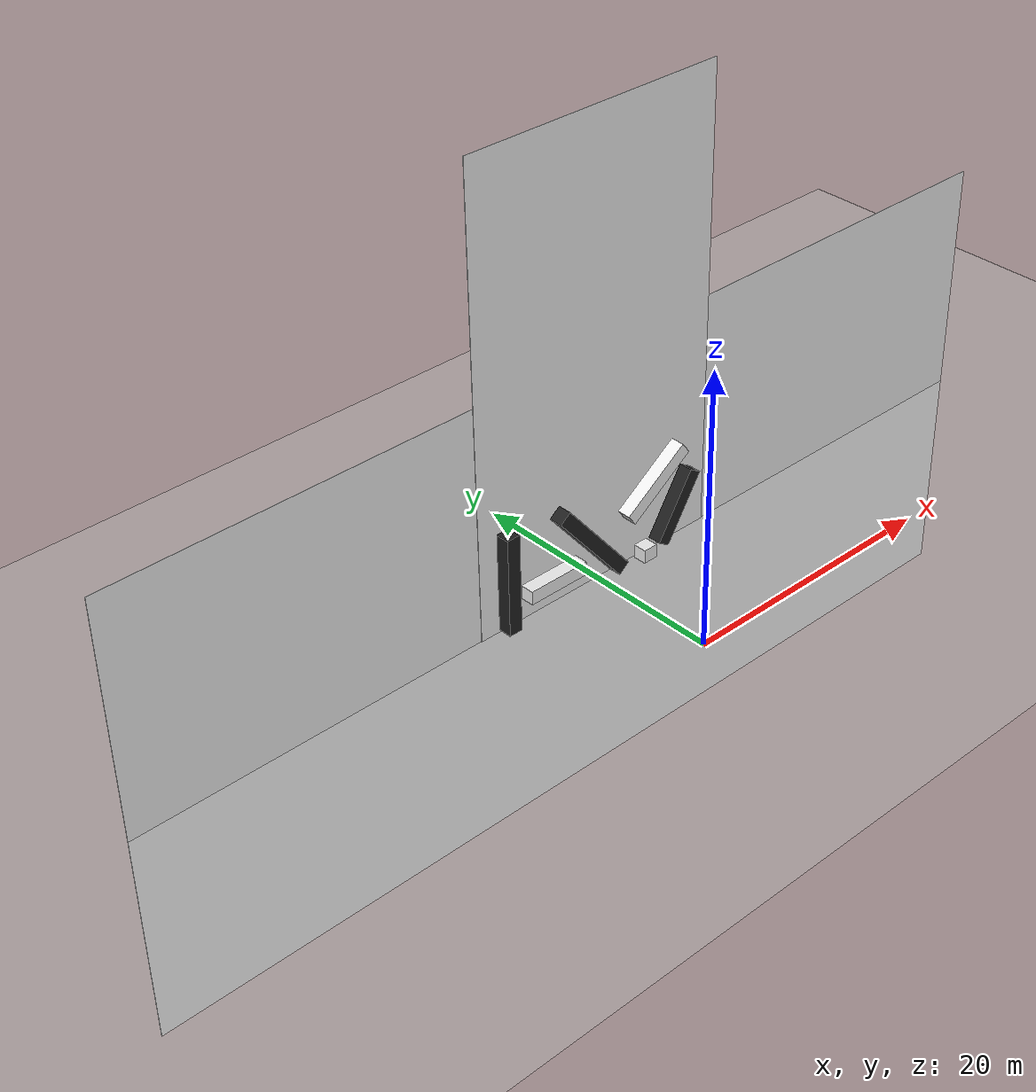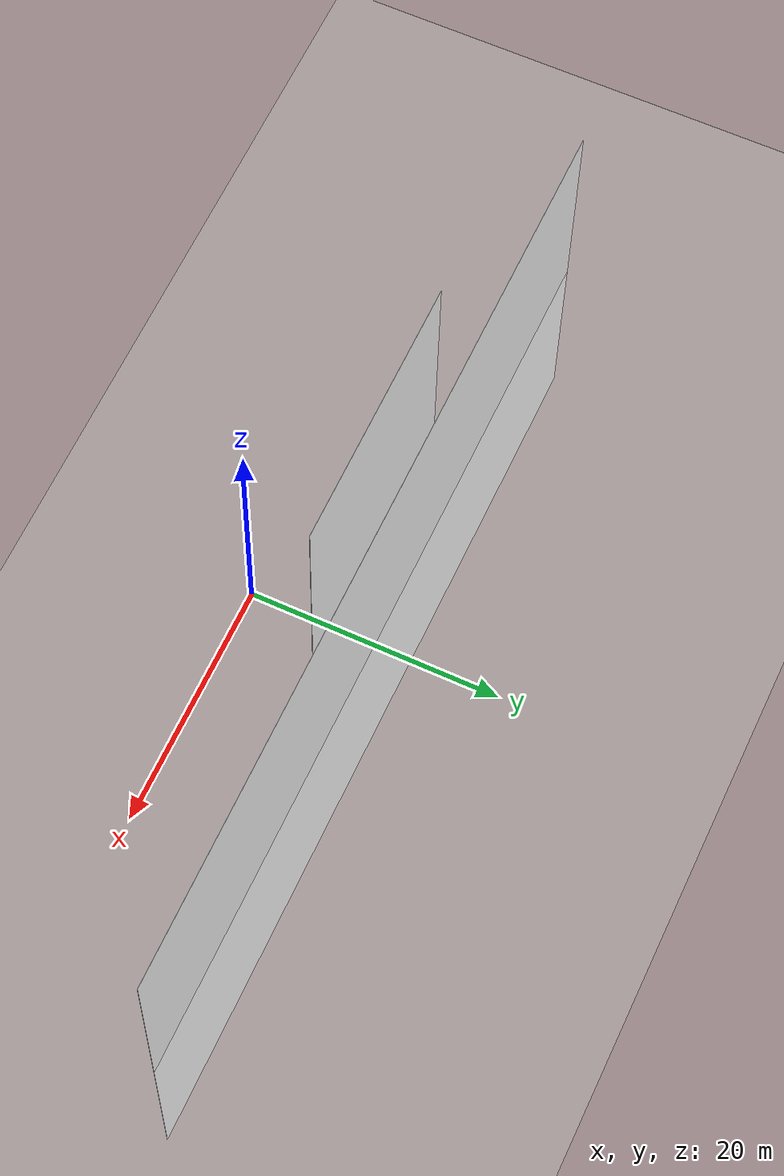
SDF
<sdf version="1.7">
 <world name="default">
  <light name="sun" type="directional">
   <cast_shadows>0</cast_shadows>
   <pose>0 0 10 0 -0 0</pose>
   <diffuse>0.8 0.8 0.8 1</diffuse>
   <specular>0.2 0.2 0.2 1</specular>
   <attenuation>
    <range>1000</range>
    <constant>0.9</constant>
    <linear>0.01</linear>
    <quadratic>0.001</quadratic>
   </attenuation>
   <direction>-0.5 0.1 -0.9</direction>
   <spot><inner_angle>0</inner_angle><outer_angle>0</outer_angle><falloff>0</falloff></spot>
  </light>
  <model name="ground_plane">
   <static>1</static>
   <link name="link">
    <collision name="collision">
     <geometry><plane><normal>0 0 1</normal><size>100 100</size></plane></geometry>
     <surface>
      <contact><collide_bitmask>65535</collide_bitmask></contact>
      <friction><ode><mu>100</mu><mu2>50</mu2></ode></friction>
     </surface>
    </collision>
    <visual name="visual">
     <cast_shadows>0</cast_shadows>
     <geometry><plane><normal>0 0 1</normal><size>100 100</size></plane></geometry>
     <material>
      <script><uri>file://media/materials/scripts/gazebo.material</uri><name>Gazebo/Grey</name></script>
     </material>
    </visual>
   </link>
  </model>
  <gravity>0 0 -9.8</gravity>
  <magnetic_field>6e-06 2.3e-05 -4.2e-05</magnetic_field>
  <atmosphere type="adiabatic"/>
  <physics type="ode">
   <max_step_size>0.001</max_step_size>
   <real_time_factor>1</real_time_factor>
   <real_time_update_rate>1000</real_time_update_rate>
  </physics>
  <scene><ambient>0.4 0.4 0.4 1</ambient><background>0.7 0.7 0.7 1</background><shadows>0</shadows></scene>
  <spherical_coordinates>
   <surface_model>EARTH_WGS84</surface_model>
   <latitude_deg>0</latitude_deg>
   <longitude_deg>0</longitude_deg>
   <elevation>0</elevation>
   <heading_deg>0</heading_deg>
  </spherical_coordinates>
  <model name="Untitled_0">
   <link name="link_0">
    <inertial>
     <mass>1</mass>
     <inertia>
      <ixx>0.166667</ixx>
      <ixy>0</ixy>
      <ixz>0</ixz>
      <iyy>0.166667</iyy>
      <iyz>0</iyz>
      <izz>0.166667</izz>
     </inertia>
    </inertial>
    <gravity>0</gravity>
    <visual name="visual">
     <geometry><box><size>1 1 7.3332</size></box></geometry>
     <material>
      <lighting>1</lighting>
      <script><uri>file://media/materials/scripts/gazebo.material</uri><name>Gazebo/Black</name></script>
      <shader type="pixel"><normal_map>__default__</normal_map></shader>
      <ambient>0 0 0 1</ambient>
      <diffuse>0 0 0 1</diffuse>
      <specular>0.1 0.1 0.1 1</specular>
      <emissive>0 0 0 1</emissive>
     </material>
     <cast_shadows>0</cast_shadows>
    </visual>
    <collision name="collision">
     <geometry><box><size>1 1 7.3332</size></box></geometry>
     <surface>
      <friction>
       <ode><mu>1</mu><mu2>1</mu2><fdir1>0 0 0</fdir1><slip1>0</slip1><slip2>0</slip2></ode>
       <torsional>
        <coefficient>1</coefficient>
        <patch_radius>0</patch_radius>
        <surface_radius>0</surface_radius>
        <use_patch_radius>1</use_patch_radius>
        <ode><slip>0</slip></ode>
       </torsional>
      </friction>
      <bounce><restitution_coefficient>0</restitution_coefficient><threshold>1e+06</threshold></bounce>
      <contact>
       <collide_without_contact>0</collide_without_contact>
       <collide_without_contact_bitmask>1</collide_without_contact_bitmask>
       <collide_bitmask>1</collide_bitmask>
       <ode>
        <soft_cfm>0</soft_cfm>
        <soft_erp>0.2</soft_erp>
        <kp>1e+13</kp>
        <kd>1</kd>
        <max_vel>0.01</max_vel>
        <min_depth>0</min_depth>
       </ode>
       <bullet>
        <split_impulse>1</split_impulse>
        <split_impulse_penetration_threshold>-0.01</split_impulse_penetration_threshold>
        <soft_cfm>0</soft_cfm>
        <soft_erp>0.2</soft_erp>
        <kp>1e+13</kp>
        <kd>1</kd>
       </bullet>
      </contact>
     </surface>
    </collision>
   </link>
   <static>1</static>
   <pose>-8.10011 9.21128 4.00432 0 -0 0</pose>
  </model>
  <model name="Untitled_0_clone_0_clone">
   <link name="link_0">
    <inertial>
     <mass>1</mass>
     <inertia>
      <ixx>0.166667</ixx>
      <ixy>0</ixy>
      <ixz>0</ixz>
      <iyy>0.166667</iyy>
      <iyz>0</iyz>
      <izz>0.166667</izz>
     </inertia>
    </inertial>
    <gravity>0</gravity>
    <visual name="visual">
     <geometry><box><size>1 1 8.20534</size></box></geometry>
     <material>
      <lighting>1</lighting>
      <script><uri>file://media/materials/scripts/gazebo.material</uri><name>Gazebo/Black</name></script>
      <shader type="pixel"><normal_map>__default__</normal_map></shader>
      <ambient>0 0 0 1</ambient>
      <diffuse>0 0 0 1</diffuse>
      <specular>0.1 0.1 0.1 1</specular>
      <emissive>0 0 0 1</emissive>
     </material>
     <cast_shadows>0</cast_shadows>
    </visual>
    <collision name="collision">
     <geometry><box><size>1 1 8.20534</size></box></geometry>
     <surface>
      <friction>
       <ode><mu>1</mu><mu2>1</mu2><fdir1>0 0 0</fdir1><slip1>0</slip1><slip2>0</slip2></ode>
       <torsional>
        <coefficient>1</coefficient>
        <patch_radius>0</patch_radius>
        <surface_radius>0</surface_radius>
        <use_patch_radius>1</use_patch_radius>
        <ode><slip>0</slip></ode>
       </torsional>
      </friction>
      <bounce><restitution_coefficient>0</restitution_coefficient><threshold>1e+06</threshold></bounce>
      <contact>
       <collide_without_contact>0</collide_without_contact>
       <collide_without_contact_bitmask>1</collide_without_contact_bitmask>
       <collide_bitmask>1</collide_bitmask>
       <ode>
        <soft_cfm>0</soft_cfm>
        <soft_erp>0.2</soft_erp>
        <kp>1e+13</kp>
        <kd>1</kd>
        <max_vel>0.01</max_vel>
        <min_depth>0</min_depth>
       </ode>
       <bullet>
        <split_impulse>1</split_impulse>
        <split_impulse_penetration_threshold>-0.01</split_impulse_penetration_threshold>
        <soft_cfm>0</soft_cfm>
        <soft_erp>0.2</soft_erp>
        <kp>1e+13</kp>
        <kd>1</kd>
       </bullet>
      </contact>
     </surface>
    </collision>
   </link>
   <static>1</static>
   <pose>-1.67139 8.66089 4.34718 0 -0.678952 0</pose>
  </model>
  <light name="user_directional_light_0" type="directional">
   <pose>-0.169991 0.23952 1 0 -0 0</pose>
   <diffuse>0.5 0.5 0.5 1</diffuse>
   <specular>0.1 0.1 0.1 1</specular>
   <direction>0.1 0.1 -0.9</direction>
   <attenuation>
    <range>20</range>
    <constant>0.5</constant>
    <linear>0.01</linear>
    <quadratic>0.001</quadratic>
   </attenuation>
   <spot><inner_angle>0</inner_angle><outer_angle>0</outer_angle><falloff>0</falloff></spot>
  </light>
  <model name="Untitled23">
   <link name="link_2">
    <inertial>
     <mass>20.383</mass>
     <inertia><ixx>1883.11</ixx><ixy>0</ixy><ixz>0</ixz><iyy>2554.49</iyy><iyz>0</iyz><izz>671.385</izz></inertia>
    </inertial>
    <visual name="visual">
     <geometry><box><size>72.3894 0.030727 33.2961</size></box></geometry>
     <material>
      <lighting>1</lighting>
      <script><uri>file://media/materials/scripts/gazebo.material</uri><name>Gazebo/White</name></script>
      <shader type="pixel"><normal_map>__default__</normal_map></shader>
      <ambient>1 1 1 1</ambient>
      <diffuse>1 1 1 1</diffuse>
      <specular>1 1 1 1</specular>
      <emissive>1 1 1 1</emissive>
     </material>
     <cast_shadows>0</cast_shadows>
    </visual>
    <collision name="collision">
     <geometry><box><size>72.3894 0.030727 33.2961</size></box></geometry>
     <surface>
      <friction>
       <ode><mu>1</mu><mu2>1</mu2><fdir1>0 0 0</fdir1><slip1>0</slip1><slip2>0</slip2></ode>
       <torsional>
        <coefficient>1</coefficient>
        <patch_radius>0</patch_radius>
        <surface_radius>0</surface_radius>
        <use_patch_radius>1</use_patch_radius>
        <ode><slip>0</slip></ode>
       </torsional>
      </friction>
      <bounce><restitution_coefficient>0</restitution_coefficient><threshold>1e+06</threshold></bounce>
      <contact>
       <collide_without_contact>0</collide_without_contact>
       <collide_without_contact_bitmask>1</collide_without_contact_bitmask>
       <collide_bitmask>1</collide_bitmask>
       <ode>
        <soft_cfm>0</soft_cfm>
        <soft_erp>0.2</soft_erp>
        <kp>1e+13</kp>
        <kd>1</kd>
        <max_vel>0.01</max_vel>
        <min_depth>0</min_depth>
       </ode>
       <bullet>
        <split_impulse>1</split_impulse>
        <split_impulse_penetration_threshold>-0.01</split_impulse_penetration_threshold>
        <soft_cfm>0</soft_cfm>
        <soft_erp>0.2</soft_erp>
        <kp>1e+13</kp>
        <kd>1</kd>
       </bullet>
      </contact>
     </surface>
    </collision>
   </link>
   <static>1</static>
   <pose>-0.103476 10.0194 0.5 0 -0 0</pose>
  </model>
  <model name="Untitled2">
   <link name="link_2">
    <inertial>
     <mass>20.383</mass>
     <inertia><ixx>1883.11</ixx><ixy>0</ixy><ixz>0</ixz><iyy>2554.49</iyy><iyz>0</iyz><izz>671.385</izz></inertia>
    </inertial>
    <visual name="visual">
     <geometry><box><size>19.8811 0.030727 33.2961</size></box></geometry>
     <material>
      <lighting>1</lighting>
      <script><uri>file://media/materials/scripts/gazebo.material</uri><name>Gazebo/White</name></script>
      <shader type="pixel"><normal_map>__default__</normal_map></shader>
      <ambient>1 1 1 1</ambient>
      <diffuse>1 1 1 1</diffuse>
      <specular>0 0 0 1</specular>
      <emissive>0 0 0 1</emissive>
     </material>
    </visual>
    <collision name="collision">
     <geometry><box><size>19.8811 0.030727 33.2961</size></box></geometry>
     <surface>
      <friction>
       <ode><mu>1</mu><mu2>1</mu2><fdir1>0 0 0</fdir1><slip1>0</slip1><slip2>0</slip2></ode>
       <torsional>
        <coefficient>1</coefficient>
        <patch_radius>0</patch_radius>
        <surface_radius>0</surface_radius>
        <use_patch_radius>1</use_patch_radius>
        <ode><slip>0</slip></ode>
       </torsional>
      </friction>
      <bounce><restitution_coefficient>0</restitution_coefficient><threshold>1e+06</threshold></bounce>
      <contact>
       <collide_without_contact>0</collide_without_contact>
       <collide_without_contact_bitmask>1</collide_without_contact_bitmask>
       <collide_bitmask>1</collide_bitmask>
       <ode>
        <soft_cfm>0</soft_cfm>
        <soft_erp>0.2</soft_erp>
        <kp>1e+13</kp>
        <kd>1</kd>
        <max_vel>0.01</max_vel>
        <min_depth>0</min_depth>
       </ode>
       <bullet>
        <split_impulse>1</split_impulse>
        <split_impulse_penetration_threshold>-0.01</split_impulse_penetration_threshold>
        <soft_cfm>0</soft_cfm>
        <soft_erp>0.2</soft_erp>
        <kp>1e+13</kp>
        <kd>1</kd>
       </bullet>
      </contact>
     </surface>
    </collision>
   </link>
   <static>0</static>
   <pose>-0.046205 9.87091 16.648 -5e-05 -0 -0</pose>
  </model>
  <model name="Untitled_0_clone_0_clone_clone_clone_0">
   <link name="link_0">
    <inertial>
     <mass>1</mass>
     <inertia>
      <ixx>0.166667</ixx>
      <ixy>0</ixy>
      <ixz>0</ixz>
      <iyy>0.166667</iyy>
      <iyz>0</iyz>
      <izz>0.166667</izz>
     </inertia>
    </inertial>
    <visual name="visual">
     <geometry><box><size>1 1 4.70672</size></box></geometry>
     <material>
      <lighting>1</lighting>
      <script><uri>file://media/materials/scripts/gazebo.material</uri><name>Gazebo/White</name></script>
      <shader type="pixel"><normal_map>__default__</normal_map></shader>
      <ambient>1 1 1 1</ambient>
      <diffuse>1 1 1 1</diffuse>
      <specular>1 1 1 1</specular>
      <emissive>1 1 1 1</emissive>
     </material>
     <cast_shadows>0</cast_shadows>
    </visual>
    <collision name="collision">
     <geometry><box><size>1 1 4.70672</size></box></geometry>
     <surface>
      <friction>
       <ode><mu>1</mu><mu2>1</mu2><fdir1>0 0 0</fdir1><slip1>0</slip1><slip2>0</slip2></ode>
       <torsional>
        <coefficient>1</coefficient>
        <patch_radius>0</patch_radius>
        <surface_radius>0</surface_radius>
        <use_patch_radius>1</use_patch_radius>
        <ode><slip>0</slip></ode>
       </torsional>
      </friction>
      <bounce><restitution_coefficient>0</restitution_coefficient><threshold>1e+06</threshold></bounce>
      <contact>
       <collide_without_contact>0</collide_without_contact>
       <collide_without_contact_bitmask>1</collide_without_contact_bitmask>
       <collide_bitmask>1</collide_bitmask>
       <ode>
        <soft_cfm>0</soft_cfm>
        <soft_erp>0.2</soft_erp>
        <kp>1e+13</kp>
        <kd>1</kd>
        <max_vel>0.01</max_vel>
        <min_depth>0</min_depth>
       </ode>
       <bullet>
        <split_impulse>1</split_impulse>
        <split_impulse_penetration_threshold>-0.01</split_impulse_penetration_threshold>
        <soft_cfm>0</soft_cfm>
        <soft_erp>0.2</soft_erp>
        <kp>1e+13</kp>
        <kd>1</kd>
       </bullet>
      </contact>
     </surface>
    </collision>
   </link>
   <static>1</static>
   <pose>-4.33256 9.19029 2.34243 0 -1.57042 0</pose>
  </model>
  <model name="Untitled_0_clone_0_clone_clone_clone_0_clone">
   <link name="link_0">
    <inertial>
     <mass>1</mass>
     <inertia>
      <ixx>0.166667</ixx>
      <ixy>0</ixy>
      <ixz>0</ixz>
      <iyy>0.166667</iyy>
      <iyz>0</iyz>
      <izz>0.166667</izz>
     </inertia>
    </inertial>
    <visual name="visual">
     <geometry><box><size>0.999994 1 5.95018</size></box></geometry>
     <material>
      <lighting>1</lighting>
      <script><uri>file://media/materials/scripts/gazebo.material</uri><name>Gazebo/White</name></script>
      <shader type="pixel"><normal_map>__default__</normal_map></shader>
      <ambient>1 1 1 1</ambient>
      <diffuse>1 1 1 1</diffuse>
      <specular>1 1 1 1</specular>
      <emissive>1 1 1 1</emissive>
     </material>
     <cast_shadows>0</cast_shadows>
    </visual>
    <collision name="collision">
     <geometry><box><size>0.999994 1 5.95018</size></box></geometry>
     <surface>
      <friction>
       <ode><mu>1</mu><mu2>1</mu2><fdir1>0 0 0</fdir1><slip1>0</slip1><slip2>0</slip2></ode>
       <torsional>
        <coefficient>1</coefficient>
        <patch_radius>0</patch_radius>
        <surface_radius>0</surface_radius>
        <use_patch_radius>1</use_patch_radius>
        <ode><slip>0</slip></ode>
       </torsional>
      </friction>
      <bounce><restitution_coefficient>0</restitution_coefficient><threshold>1e+06</threshold></bounce>
      <contact>
       <collide_without_contact>0</collide_without_contact>
       <collide_without_contact_bitmask>1</collide_without_contact_bitmask>
       <collide_bitmask>1</collide_bitmask>
       <ode>
        <soft_cfm>0</soft_cfm>
        <soft_erp>0.2</soft_erp>
        <kp>1e+13</kp>
        <kd>1</kd>
        <max_vel>0.01</max_vel>
        <min_depth>0</min_depth>
       </ode>
       <bullet>
        <split_impulse>1</split_impulse>
        <split_impulse_penetration_threshold>-0.01</split_impulse_penetration_threshold>
        <soft_cfm>0</soft_cfm>
        <soft_erp>0.2</soft_erp>
        <kp>1e+13</kp>
        <kd>1</kd>
       </bullet>
      </contact>
     </surface>
    </collision>
   </link>
   <static>1</static>
   <pose>4.24186 8.88208 6.09936 3.14159 -0.952674 3.14159</pose>
  </model>
  <model name="Untitled_0_clone_0_clone_clone">
   <link name="link_0">
    <inertial>
     <mass>1</mass>
     <inertia>
      <ixx>0.166667</ixx>
      <ixy>0</ixy>
      <ixz>0</ixz>
      <iyy>0.166667</iyy>
      <iyz>0</iyz>
      <izz>0.166667</izz>
     </inertia>
    </inertial>
    <gravity>0</gravity>
    <visual name="visual">
     <geometry><box><size>1 1 5.38485</size></box></geometry>
     <material>
      <lighting>1</lighting>
      <script><uri>file://media/materials/scripts/gazebo.material</uri><name>Gazebo/Black</name></script>
      <shader type="pixel"><normal_map>__default__</normal_map></shader>
      <ambient>0 0 0 1</ambient>
      <diffuse>0 0 0 1</diffuse>
      <specular>0.1 0.1 0.1 1</specular>
      <emissive>0 0 0 1</emissive>
     </material>
     <cast_shadows>0</cast_shadows>
    </visual>
    <collision name="collision">
     <geometry><box><size>1 1 5.38485</size></box></geometry>
     <surface>
      <friction>
       <ode><mu>1</mu><mu2>1</mu2><fdir1>0 0 0</fdir1><slip1>0</slip1><slip2>0</slip2></ode>
       <torsional>
        <coefficient>1</coefficient>
        <patch_radius>0</patch_radius>
        <surface_radius>0</surface_radius>
        <use_patch_radius>1</use_patch_radius>
        <ode><slip>0</slip></ode>
       </torsional>
      </friction>
      <bounce><restitution_coefficient>0</restitution_coefficient><threshold>1e+06</threshold></bounce>
      <contact>
       <collide_without_contact>0</collide_without_contact>
       <collide_without_contact_bitmask>1</collide_without_contact_bitmask>
       <collide_bitmask>1</collide_bitmask>
       <ode>
        <soft_cfm>0</soft_cfm>
        <soft_erp>0.2</soft_erp>
        <kp>1e+13</kp>
        <kd>1</kd>
        <max_vel>0.01</max_vel>
        <min_depth>0</min_depth>
       </ode>
       <bullet>
        <split_impulse>1</split_impulse>
        <split_impulse_penetration_threshold>-0.01</split_impulse_penetration_threshold>
        <soft_cfm>0</soft_cfm>
        <soft_erp>0.2</soft_erp>
        <kp>1e+13</kp>
        <kd>1</kd>
       </bullet>
      </contact>
     </surface>
    </collision>
   </link>
   <static>1</static>
   <pose>6.56483 9.20242 3.01458 0 0.553995 0</pose>
  </model>
  <model name="Untitled_0_clone_0_clone_clone_clone_0_clone_0">
   <link name="link_0">
    <inertial>
     <mass>1</mass>
     <inertia>
      <ixx>0.166667</ixx>
      <ixy>0</ixy>
      <ixz>0</ixz>
      <iyy>0.166667</iyy>
      <iyz>0</iyz>
      <izz>0.166667</izz>
     </inertia>
    </inertial>
    <visual name="visual">
     <geometry><box><size>1 1 1.07706</size></box></geometry>
     <material>
      <lighting>1</lighting>
      <script><uri>file://media/materials/scripts/gazebo.material</uri><name>Gazebo/White</name></script>
      <shader type="pixel"><normal_map>__default__</normal_map></shader>
      <ambient>1 1 1 1</ambient>
      <diffuse>1 1 1 1</diffuse>
      <specular>1 1 1 1</specular>
      <emissive>1 1 1 1</emissive>
     </material>
     <cast_shadows>0</cast_shadows>
    </visual>
    <collision name="collision">
     <geometry><box><size>1 1 1.07706</size></box></geometry>
     <surface>
      <friction>
       <ode><mu>1</mu><mu2>1</mu2><fdir1>0 0 0</fdir1><slip1>0</slip1><slip2>0</slip2></ode>
       <torsional>
        <coefficient>1</coefficient>
        <patch_radius>0</patch_radius>
        <surface_radius>0</surface_radius>
        <use_patch_radius>1</use_patch_radius>
        <ode><slip>0</slip></ode>
       </torsional>
      </friction>
      <bounce><restitution_coefficient>0</restitution_coefficient><threshold>1e+06</threshold></bounce>
      <contact>
       <collide_without_contact>0</collide_without_contact>
       <collide_without_contact_bitmask>1</collide_without_contact_bitmask>
       <collide_bitmask>1</collide_bitmask>
       <ode>
        <soft_cfm>0</soft_cfm>
        <soft_erp>0.2</soft_erp>
        <kp>1e+13</kp>
        <kd>1</kd>
        <max_vel>0.01</max_vel>
        <min_depth>0</min_depth>
       </ode>
       <bullet>
        <split_impulse>1</split_impulse>
        <split_impulse_penetration_threshold>-0.01</split_impulse_penetration_threshold>
        <soft_cfm>0</soft_cfm>
        <soft_erp>0.2</soft_erp>
        <kp>1e+13</kp>
        <kd>1</kd>
       </bullet>
      </contact>
     </surface>
    </collision>
   </link>
   <static>1</static>
   <pose>3.40922 8.71684 1.03909 0 -1.57042 0</pose>
  </model>
 </world>
</sdf>
